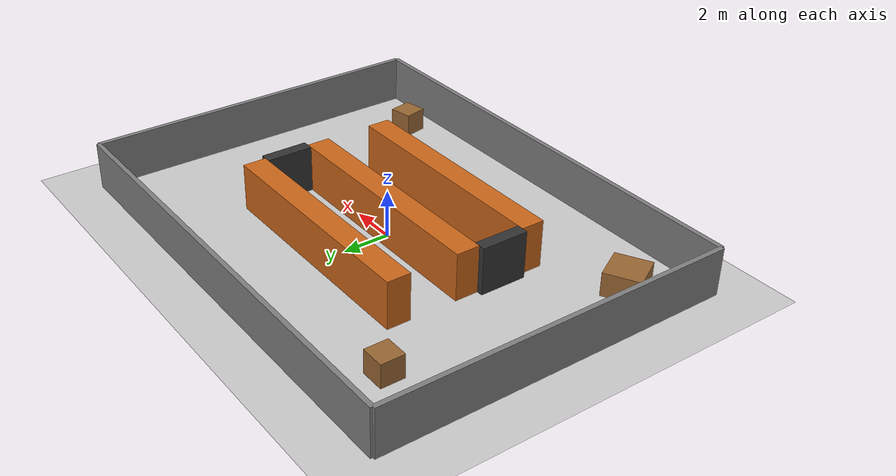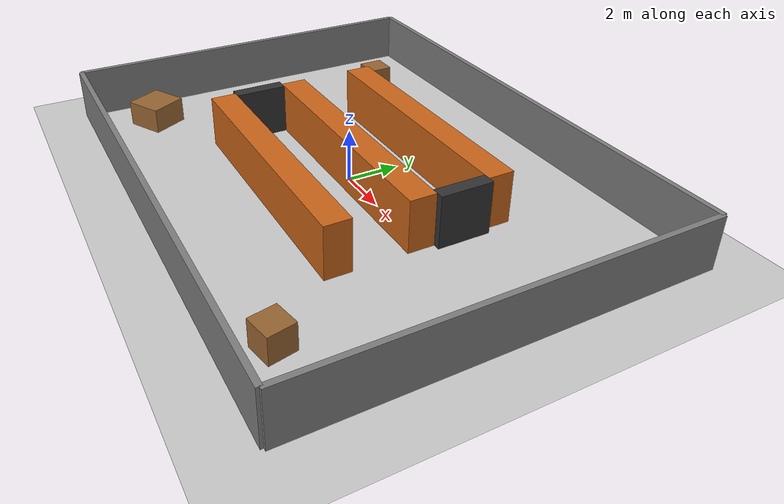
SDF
<?xml version="1.0" ?>
<sdf version="1.8">
  <world name="warehouse">
    <physics name="1ms" type="ignored">
      <max_step_size>0.001</max_step_size>
      <real_time_factor>1.0</real_time_factor>
    </physics>

    <!-- Plugins -->
    <plugin
      filename="gz-sim-physics-system"
      name="gz::sim::systems::Physics">
    </plugin>
    <plugin
      filename="gz-sim-user-commands-system"
      name="gz::sim::systems::UserCommands">
    </plugin>
    <plugin
      filename="gz-sim-scene-broadcaster-system"
      name="gz::sim::systems::SceneBroadcaster">
    </plugin>
    <plugin
      filename="gz-sim-sensors-system"
      name="gz::sim::systems::Sensors">
      <render_engine>ogre2</render_engine>
    </plugin>
    <plugin
      filename="gz-sim-imu-system"
      name="gz::sim::systems::Imu">
    </plugin>

    <!-- Sun and Ground -->
    <light type="directional" name="sun">
      <cast_shadows>true</cast_shadows>
      <pose>0 0 10 0 0 0</pose>
      <diffuse>0.8 0.8 0.8 1</diffuse>
      <specular>0.2 0.2 0.2 1</specular>
      <attenuation>
        <range>1000</range>
        <constant>0.9</constant>
        <linear>0.01</linear>
        <quadratic>0.001</quadratic>
      </attenuation>
      <direction>-0.5 0.1 -0.9</direction>
    </light>

    <model name="ground_plane">
      <static>true</static>
      <link name="link">
        <collision name="collision">
          <geometry>
            <plane>
              <normal>0 0 1</normal>
              <size>20 15</size>
            </plane>
          </geometry>
        </collision>
        <visual name="visual">
          <geometry>
            <plane>
              <normal>0 0 1</normal>
              <size>20 15</size>
            </plane>
          </geometry>
          <material>
            <ambient>0.8 0.8 0.8 1</ambient>
            <diffuse>0.8 0.8 0.8 1</diffuse>
          </material>
        </visual>
      </link>
    </model>

    <!-- Exterior Walls (20m x 15m) -->
    <!-- North Wall -->
    <model name="wall_north">
      <static>true</static>
      <pose>0 7.5 1 0 0 0</pose>
      <link name="link">
        <collision name="collision"><geometry><box><size>20 0.2 2</size></box></geometry></collision>
        <visual name="visual"><geometry><box><size>20 0.2 2</size></box></geometry><material><ambient>0.5 0.5 0.5 1</ambient></material></visual>
      </link>
    </model>
    <!-- South Wall -->
    <model name="wall_south">
      <static>true</static>
      <pose>0 -7.5 1 0 0 0</pose>
      <link name="link">
        <collision name="collision"><geometry><box><size>20 0.2 2</size></box></geometry></collision>
        <visual name="visual"><geometry><box><size>20 0.2 2</size></box></geometry><material><ambient>0.5 0.5 0.5 1</ambient></material></visual>
      </link>
    </model>
    <!-- East Wall -->
    <model name="wall_east">
      <static>true</static>
      <pose>10 0 1 0 0 0</pose>
      <link name="link">
        <collision name="collision"><geometry><box><size>0.2 15 2</size></box></geometry></collision>
        <visual name="visual"><geometry><box><size>0.2 15 2</size></box></geometry><material><ambient>0.5 0.5 0.5 1</ambient></material></visual>
      </link>
    </model>
    <!-- West Wall -->
    <model name="wall_west">
      <static>true</static>
      <pose>-10 0 1 0 0 0</pose>
      <link name="link">
        <collision name="collision"><geometry><box><size>0.2 15 2</size></box></geometry></collision>
        <visual name="visual"><geometry><box><size>0.2 15 2</size></box></geometry><material><ambient>0.5 0.5 0.5 1</ambient></material></visual>
      </link>
    </model>

    <!-- Aisles created by shelves -->
    <!-- Shelf 1 -->
    <model name="shelf_1">
      <static>true</static>
      <pose>0 3 1 0 0 0</pose>
      <link name="link">
        <collision name="collision"><geometry><box><size>10 1 2</size></box></geometry></collision>
        <visual name="visual"><geometry><box><size>10 1 2</size></box></geometry><material><ambient>0.8 0.4 0.1 1</ambient></material></visual>
      </link>
    </model>
    <!-- Shelf 2 -->
    <model name="shelf_2">
      <static>true</static>
      <pose>0 0 1 0 0 0</pose>
      <link name="link">
        <collision name="collision"><geometry><box><size>10 1 2</size></box></geometry></collision>
        <visual name="visual"><geometry><box><size>10 1 2</size></box></geometry><material><ambient>0.8 0.4 0.1 1</ambient></material></visual>
      </link>
    </model>
    <!-- Shelf 3 -->
    <model name="shelf_3">
      <static>true</static>
      <pose>0 -3 1 0 0 0</pose>
      <link name="link">
        <collision name="collision"><geometry><box><size>10 1 2</size></box></geometry></collision>
        <visual name="visual"><geometry><box><size>10 1 2</size></box></geometry><material><ambient>0.8 0.4 0.1 1</ambient></material></visual>
      </link>
    </model>

    <!-- Culs-de-sac created by horizontal blockers -->
    <model name="blocker_1">
      <static>true</static>
      <pose>-5 -1.5 1 0 0 0</pose>
      <link name="link">
        <collision name="collision"><geometry><box><size>0.5 2 2</size></box></geometry></collision>
        <visual name="visual"><geometry><box><size>0.5 2 2</size></box></geometry><material><ambient>0.2 0.2 0.2 1</ambient></material></visual>
      </link>
    </model>
    <model name="blocker_2">
      <static>true</static>
      <pose>5 1.5 1 0 0 0</pose>
      <link name="link">
        <collision name="collision"><geometry><box><size>0.5 2 2</size></box></geometry></collision>
        <visual name="visual"><geometry><box><size>0.5 2 2</size></box></geometry><material><ambient>0.2 0.2 0.2 1</ambient></material></visual>
      </link>
    </model>

    <!-- Cargo Area / Open space (left side of warehouse, x=-8 to -5)
         Let's put some random crates isolated -->
    <!-- Crate 1 -->
    <model name="crate_1">
      <static>true</static>
      <pose>-7 5 0.5 0 0 0</pose>
      <link name="link">
        <collision name="collision"><geometry><box><size>1 1 1</size></box></geometry></collision>
        <visual name="visual"><geometry><box><size>1 1 1</size></box></geometry><material><ambient>0.6 0.4 0.2 1</ambient></material></visual>
      </link>
    </model>
    <!-- Crate 2 -->
    <model name="crate_2">
      <static>true</static>
      <pose>-8 -5 0.5 0 0 0.5</pose>
      <link name="link">
        <collision name="collision"><geometry><box><size>1.5 1.5 1</size></box></geometry></collision>
        <visual name="visual"><geometry><box><size>1.5 1.5 1</size></box></geometry><material><ambient>0.6 0.4 0.2 1</ambient></material></visual>
      </link>
    </model>
    <!-- Crate 3 -->
    <model name="crate_3">
      <static>true</static>
      <pose>7 -6 0.5 0 0 0.2</pose>
      <link name="link">
        <collision name="collision"><geometry><box><size>1 1 1</size></box></geometry></collision>
        <visual name="visual"><geometry><box><size>1 1 1</size></box></geometry><material><ambient>0.6 0.4 0.2 1</ambient></material></visual>
      </link>
    </model>
  </world>
</sdf>
